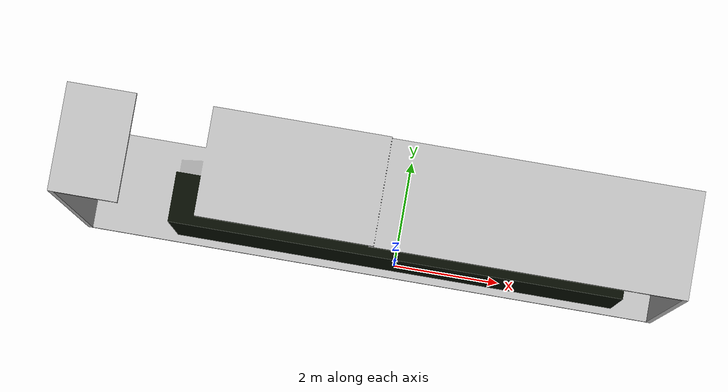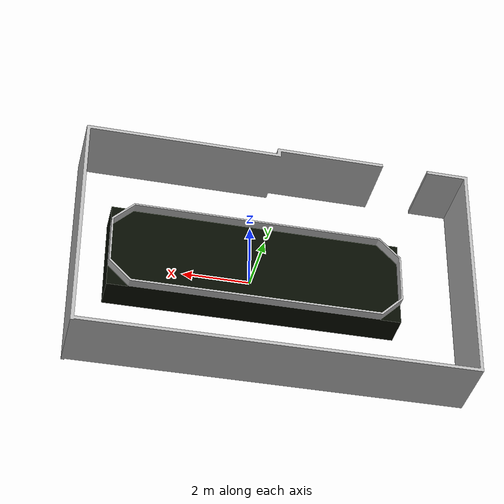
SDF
<?xml version="1.0"?>
<sdf version="1.7">
  <model name="G210_polygon">
    <!-- Флаг static="true" важен для неподвижных объектов -->
    <static>true</static>
    <link name="link">
      <visual name="visual">
        <geometry>
          <!-- Путь к вашему DAE-файлу относительно папки meshes/ -->
          <mesh>
	    <uri>model://G210_polygon/meshes/G210_polygon.dae</uri>
          </mesh>
        </geometry>
      </visual>
      <!-- Критически важный блок для симуляции! -->
      <collision name="collision">
        <geometry>
          <mesh>
            <uri>model://G210_polygon/meshes/G210_polygon.dae</uri>
          </mesh>
        </geometry>
      </collision>
    </link>
  </model>
</sdf>
